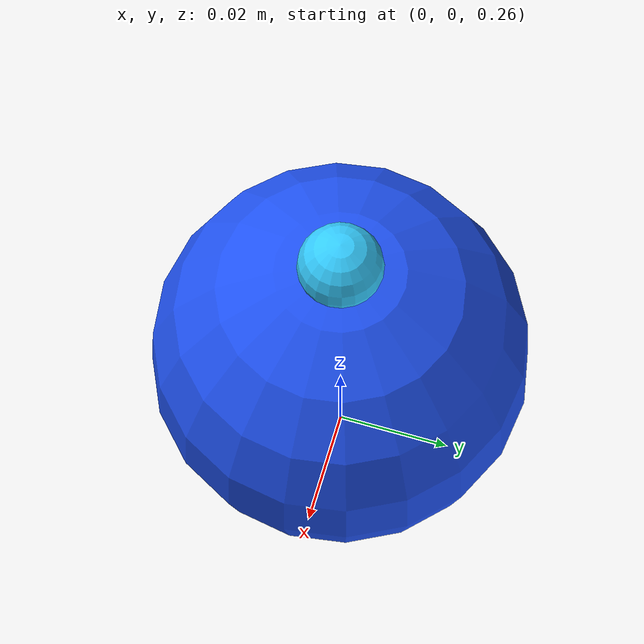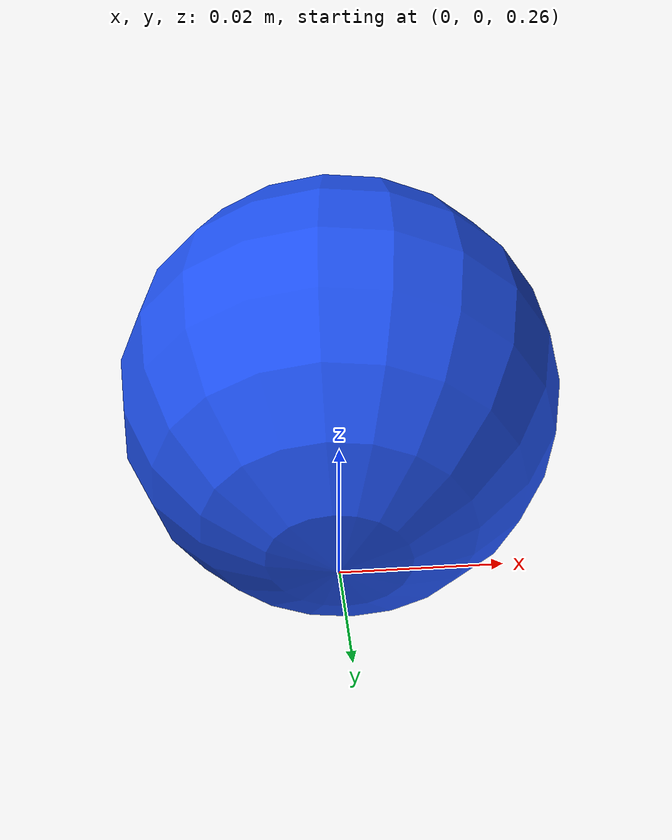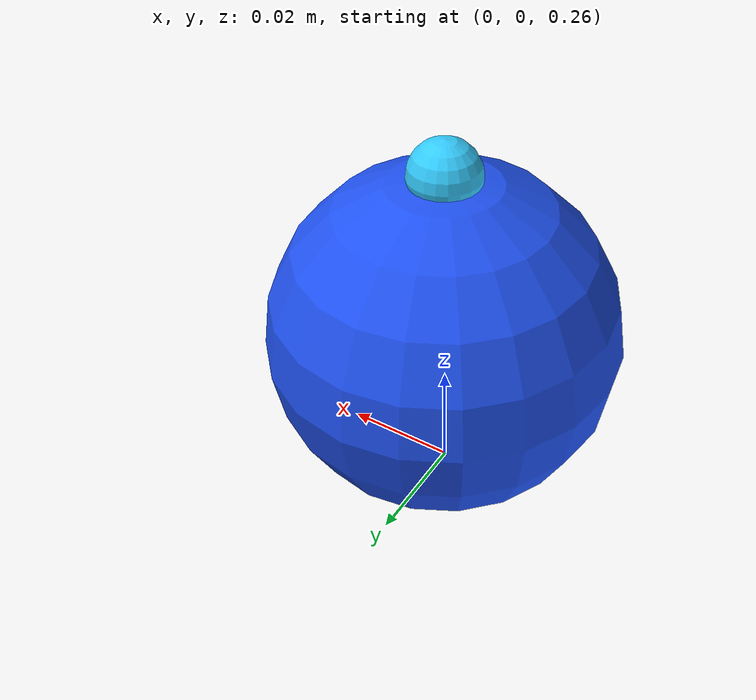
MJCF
<mujoco model="flare_payload">
  <compiler angle="radian" autolimits="true"/>
  <worldbody>
    <body name="payload" pos="0 0 0.29">
      <freejoint name="payload_free"/>
      <geom name="payload_geom" type="sphere" size="0.03" rgba="0.12 0.32 0.95 1" mass="0.1128"/>
      <site name="payload_connection" pos="0 0 0.03" size="0.006" rgba="0.2 0.8 1 1"/>
    </body>
  </worldbody>
</mujoco>
